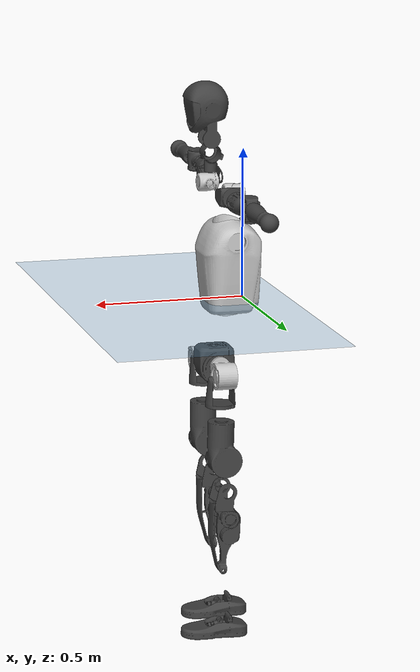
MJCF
<mujoco model="T1">
  <compiler angle="radian" assetdir="assets" balanceinertia="true" inertiafromgeom="false"/>

  <option timestep="0.005" density="1.2" viscosity="2e-05"/>

  <size nkey="1"/>

  <visual>
    <quality shadowsize="8192"/>
    <map shadowclip="0.5"/>
  </visual>

  <default>
    <default class="/">
      <joint armature="0.01" damping="0.01" frictionloss="0.1"/>
      <geom contype="0" conaffinity="0" group="1" solref="-1000 -80"/>
      <site size="0.01 0.005 0.005" group="5"/>
      <general forcelimited="true" biastype="affine" gainprm="25" biasprm="0 -25 -0.6"/>
      <default class="t1">
        <geom rgba="0.25 0.25 0.25 1"/>
        <default class="visual">
          <geom type="mesh" group="2"/>
        </default>
        <default class="collision">
          <geom group="3"/>
        </default>
        <default class="foot">
          <geom size="0.1115 0.05 0.015" type="box" condim="6" group="4" priority="1" solimp="0.015 1 0.015"/>
        </default>
        <default class="reward_collision_sphere">
          <geom group="5" rgba="1 0 0 1"/>
        </default>
      </default>
    </default>
  </default>

  <asset>
    <texture type="skybox" colorspace="auto" name="//unnamed_texture_0" builtin="gradient" rgb1="0.95 0.95 0.95" rgb2="0.95 0.95 0.95" width="100" height="600"/>
    <texture type="2d" colorspace="auto" name="texplane" builtin="checker" rgb1="0.345 0.575 0.748" rgb2="0.345 0.575 0.748" markrgb="1 1 1" width="512" height="512"/>
    <material name="MatPlane" class="/" texture="texplane" texuniform="true" texrepeat="2 2" specular="0.9"/>
    <mesh name="Trunk" class="/" file="Trunk.stl"/>
    <mesh name="H1" class="/" file="H1.stl"/>
    <mesh name="H2" class="/" file="H2.stl"/>
    <mesh name="AL1" class="/" file="AL1.stl"/>
    <mesh name="AL2" class="/" file="AL2.stl"/>
    <mesh name="AL3" class="/" file="AL3.stl"/>
    <mesh name="left_hand_link" class="/" file="left_hand_link.stl"/>
    <mesh name="AR1" class="/" file="AR1.stl"/>
    <mesh name="AR2" class="/" file="AR2.stl"/>
    <mesh name="AR3" class="/" file="AR3.stl"/>
    <mesh name="right_hand_link" class="/" file="right_hand_link.stl"/>
    <mesh name="Waist" class="/" file="Waist.stl"/>
    <mesh name="Hip_Pitch_Left" class="/" file="Hip_Pitch_Left.stl"/>
    <mesh name="Hip_Roll_Left" class="/" file="Hip_Roll_Left.stl"/>
    <mesh name="Hip_Yaw_Left" class="/" file="Hip_Yaw_Left.stl"/>
    <mesh name="Shank_Left" class="/" file="Shank_Left.stl"/>
    <mesh name="Ankle_Cross_Left" class="/" file="Ankle_Cross_Left.stl"/>
    <mesh name="left_foot_link" class="/" file="left_foot_link.stl"/>
    <mesh name="Hip_Pitch_Right" class="/" file="Hip_Pitch_Right.stl"/>
    <mesh name="Hip_Roll_Right" class="/" file="Hip_Roll_Right.stl"/>
    <mesh name="Hip_Yaw_Right" class="/" file="Hip_Yaw_Right.stl"/>
    <mesh name="Shank_Right" class="/" file="Shank_Right.stl"/>
    <mesh name="Ankle_Cross_Right" class="/" file="Ankle_Cross_Right.stl"/>
    <mesh name="right_foot_link" class="/" file="right_foot_link.stl"/>
  </asset>

  <worldbody>
    <geom name="floor" class="/" size="100 100 0.125" type="plane" group="0" material="MatPlane"/>
    <light name="toplight_shadow" class="/" pos="0 0 5" dir="0.0990148 0.0990148 -0.990148" type="directional" ambient="0.04 0.04 0.04" diffuse="0.55 0.55 0.55" specular="0.12 0.12 0.12"/>
    <light name="toplight_fill" class="/" pos="0 0 5" dir="0.0990148 0.0990148 -0.990148" type="directional" castshadow="false" ambient="0.04 0.04 0.04" diffuse="0.3 0.3 0.3" specular="0.08 0.08 0.08"/>
    <body name="trunk" childclass="t1" pos="-7.02448e-05 0.0108179 -0.00414562" quat="0.999977 -0.00387033 -0.00275157 0.00490448">
      <inertial pos="0.086673 0.0089215 0.183717" quat="0.99733 0.00250423 -0.0430504 -0.058933" mass="37.2819" diaginertia="0.745509 0.0977176 0.680107"/>
      <joint name="//unnamed_joint_0" type="free" armature="0" damping="0" frictionloss="0"/>
      <geom name="//unnamed_geom_1" class="visual" rgba="0.76 0.76 0.76 1" mesh="Trunk"/>
      <geom name="//unnamed_geom_2" class="collision" size="0.111225 0.1483 0.22245" pos="0.100133 0 0.206639" type="box"/>
      <geom name="//unnamed_geom_3" class="reward_collision_sphere" size="0.170545" pos="0.100133 0 0.172199"/>
      <geom name="//unnamed_geom_4" class="reward_collision_sphere" size="0.022245" pos="0.100133 0.0899405 0"/>
      <geom name="//unnamed_geom_5" class="reward_collision_sphere" size="0.022245" pos="0.100133 -0.0899405 0"/>
      <geom name="//unnamed_geom_6" class="reward_collision_sphere" size="0.022245" pos="0.100133 0.113219 0.309958"/>
      <geom name="//unnamed_geom_7" class="reward_collision_sphere" size="0.022245" pos="0.100133 -0.113219 0.309958"/>
      <site name="imu" pos="-0.0664843 -0.00326924 0.0656746" size="0.01483"/>
      <camera name="track" pos="0 -2.11625 0" quat="0.707107 0.707107 0 0" mode="trackcom"/>
      <camera name="ego_camera" pos="0.203605 0 0.723236" quat="-0.5 -0.5 0.5 0.5"/>
      <body name="H1" pos="0.118721 -0.000578441 0.435175" quat="1 -0.000549691 0.000106238 -0.000441478">
        <inertial pos="-0.000834513 0.0027071 0.0992915" quat="0.769798 -0.0214372 0.00295536 0.63792" mass="1.41319" diaginertia="0.00373656 0.000277954 0.00224688"/>
        <joint name="AAHead_yaw" pos="0 0 0" axis="-0.00883029 0.0287902 0.999546" range="-1.8353 1.49892" armature="0.00249338" damping="0" frictionloss="0.0293865"/>
        <geom name="//unnamed_geom_8" class="visual" mesh="H1"/>
        <body name="H2" pos="0.00985833 0.0187447 0.11401" quat="0.999989 0.0013505 -0.000686742 -0.00442609">
          <inertial pos="-0.00146042 0.0162116 0.187631" quat="0.986736 0.0884129 -0.0296189 -0.132884" mass="1.71093" diaginertia="0.0234637 0.00297019 0.0242495"/>
          <joint name="Head_pitch" pos="0 0 0" axis="0.0206225 -0.999078 -0.0376558" range="-1.32677 0.497708" armature="0.00555606" damping="0.0856357" frictionloss="0.108392"/>
          <geom name="//unnamed_geom_9" class="visual" mesh="H2"/>
          <geom name="//unnamed_geom_10" class="collision" size="0.11864" pos="0.0166889 0 0.189419"/>
          <geom name="//unnamed_geom_11" class="reward_collision_sphere" size="0.13347" pos="0.0333778 0 0.172199"/>
        </body>
      </body>
      <body name="AL1" pos="0.0894694 0.112683 0.393732" quat="0.999965 -0.0033246 -0.00408579 0.00653616">
        <inertial pos="0.0111967 0.0427397 0.0043566" quat="0.50339 0.497417 -0.505089 0.494024" mass="1.96509" diaginertia="0.0203962 0.0023738 0.00599963"/>
        <joint name="Left_Shoulder_Pitch" pos="0 0 0" axis="0.0544556 0.997729 0.0396434" range="-3.07888 0.876223" armature="0.0144755" damping="0.086671" frictionloss="0.0663935"/>
        <geom name="//unnamed_geom_12" class="visual" rgba="0.76 0.76 0.76 1" mesh="AL1"/>
        <body name="AL2" pos="0.0159822 0.0407562 -0.00876029" quat="1 0.000403366 0.000514474 -0.000269222">
          <inertial pos="0.0162758 0.0236732 0.0105778" quat="0.466254 0.530163 -0.493149 0.508269" mass="0.469206" diaginertia="0.00423501 0.000356663 0.0025929"/>
          <joint name="Left_Shoulder_Roll" pos="0 0 0" axis="-0.99958 -0.0285154 0.00523953" stiffness="0.0931453" range="-1.78426 1.65768" armature="0.00243365" damping="0" frictionloss="0.143374"/>
          <geom name="//unnamed_geom_13" class="visual" mesh="AL2"/>
          <body name="AL3" pos="-0.00847598 0.0680364 -0.0112219" quat="0.999994 -0.0024661 -0.00233429 0.00092967">
            <inertial pos="-0.0156042 0.106907 -0.00951202" quat="0.740144 0.671834 -0.02869 -0.00136359" mass="4.71158" diaginertia="0.159557 0.019093 0.0129697"/>
            <joint name="Left_Elbow_Pitch" pos="0 0 0" axis="-0.03724 -0.998633 0.0366845" stiffness="0.0479769" range="-1.92147 2.45961" armature="0.00146922" damping="0.0233585" frictionloss="0.171885"/>
            <geom name="//unnamed_geom_14" class="visual" mesh="AL3"/>
            <geom name="//unnamed_geom_15" class="collision" size="0.04449 0.111225" pos="0 0.0529062 0" quat="0.707105 0.707108 0 0" type="cylinder"/>
            <geom name="//unnamed_geom_16" class="reward_collision_sphere" size="0.053388"/>
            <body name="left_hand_link" pos="0.00721062 0.149439 0.0125129" quat="0.999963 -0.00636846 0.00330806 -0.00466434">
              <inertial pos="0.0173455 0.106225 0.0014331" quat="0.699683 0.713601 0.00900673 -0.0337194" mass="1.10805" diaginertia="0.127561 0.00957257 0.00263456"/>
              <joint name="Left_Elbow_Yaw" pos="0 0 0" axis="0.000804364 0.00472644 0.999989" range="-2.35838 0.353198" armature="0.0191705" damping="0" frictionloss="0.127777"/>
              <geom name="//unnamed_geom_17" class="visual" mesh="left_hand_link"/>
              <geom name="//unnamed_geom_18" class="collision" size="0.04449 0.129763" pos="0 0.137556 0" quat="0.707105 0.707108 0 0" type="cylinder"/>
              <geom name="//unnamed_geom_19" class="reward_collision_sphere" size="0.0741501"/>
              <geom name="//unnamed_geom_20" class="reward_collision_sphere" size="0.051905" pos="0 0.116394 0"/>
              <geom name="//unnamed_geom_21" class="reward_collision_sphere" size="0.051905" pos="0 0.227497 0"/>
            </body>
          </body>
        </body>
      </body>
      <body name="AR1" pos="0.0868135 -0.0964184 0.371372" quat="0.99999 4.64783e-06 -0.00169136 0.00415776">
        <inertial pos="0.0111291 -0.0290864 0.00722789" quat="0.505825 0.44899 -0.541609 0.499208" mass="1.84183" diaginertia="0.0237984 0.00213766 0.00464228"/>
        <joint name="Right_Shoulder_Pitch" pos="0 0 0" axis="-0.0493195 -0.997098 0.0579944" stiffness="0.0915091" range="-1.28349 3.53107" armature="0.00338085" damping="0.0591509" frictionloss="0.225708"/>
        <geom name="//unnamed_geom_22" class="visual" rgba="0.76 0.76 0.76 1" mesh="AR1"/>
        <body name="AR2" pos="-0.0176063 -0.062258 0.0116462" quat="0.999968 0.00369612 0.00188572 -0.00690837">
          <inertial pos="0.0188343 -0.0435119 0.00902868" quat="0.482833 0.528105 -0.503929 0.48377" mass="0.62814" diaginertia="0.00514732 0.00036607 0.00291144"/>
          <joint name="Right_Shoulder_Roll" pos="0 0 0" axis="-0.999531 0.0288091 0.0103507" stiffness="0.0221578" range="-1.92059 1.39851" armature="0.0136841" damping="0" frictionloss="0.0107995"/>
          <geom name="//unnamed_geom_23" class="visual" mesh="AR2"/>
          <body name="AR3" pos="-0.0117711 -0.072986 0.0188148" quat="1 -9.76808e-05 -3.05903e-05 -5.27266e-05">
            <inertial pos="-0.00361422 -0.0741202 0.00976965" quat="0.756114 0.653804 -0.026298 -0.011846" mass="3.27996" diaginertia="0.163037 0.0180887 0.00741462"/>
            <joint name="Right_Elbow_Pitch" pos="0 0 0" axis="-0.0342715 0.996954 0.0700627" range="-1.95721 2.50483" armature="0.0276444" damping="0" frictionloss="0.0555515"/>
            <geom name="//unnamed_geom_24" class="visual" mesh="AR3"/>
            <geom name="//unnamed_geom_25" class="collision" size="0.04449 0.111225" pos="0 -0.0529062 0" quat="0.707105 0.707108 0 0" type="cylinder"/>
            <geom name="//unnamed_geom_26" class="reward_collision_sphere" size="0.053388"/>
            <body name="right_hand_link" pos="-0.00232222 -0.15094 0.000790286" quat="0.999973 -0.00217206 -0.00344154 0.00607098">
              <inertial pos="-0.00400395 -0.105573 -0.0153218" quat="0.703964 0.710231 0.00156408 -0.00217388" mass="1.29916" diaginertia="0.12673 0.0115697 0.00372905"/>
              <joint name="Right_Elbow_Yaw" pos="0 0 0" axis="-0.0600935 -0.00812784 0.99816" range="0.079563 2.1876" armature="0.00254516" damping="0.10011" frictionloss="0.0480145"/>
              <geom name="//unnamed_geom_27" class="visual" mesh="right_hand_link"/>
              <geom name="//unnamed_geom_28" class="collision" size="0.04449 0.129763" pos="0 -0.137556 0" quat="0.707105 0.707108 0 0" type="cylinder"/>
              <geom name="//unnamed_geom_29" class="reward_collision_sphere" size="0.0741501"/>
              <geom name="//unnamed_geom_30" class="reward_collision_sphere" size="0.051905" pos="0 -0.116394 0"/>
              <geom name="//unnamed_geom_31" class="reward_collision_sphere" size="0.051905" pos="0 -0.227497 0"/>
            </body>
          </body>
        </body>
      </body>
      <body name="Waist" pos="0.104053 0.0148961 -0.21643" quat="1 0.000942769 6.39698e-05 -7.24578e-05">
        <inertial pos="0.0198148 0.00672822 0.00666022" quat="0.971115 -0.0364414 -0.232328 -0.0403884" mass="10.356" diaginertia="0.0794795 0.00911373 0.0902023"/>
        <joint name="Waist" pos="0 0 0" axis="0.0784502 0.00557567 0.996902" stiffness="0.0571778" range="-1.69855 1.89023" armature="0.0127992" damping="0" frictionloss="0.0342754"/>
        <geom name="//unnamed_geom_32" class="visual" mesh="Waist"/>
        <body name="Hip_Pitch_Left" pos="-0.00376353 0.111214 0.00639029" quat="0.999986 -0.000805275 -0.00483155 -0.00221281">
          <inertial pos="0.00576908 0.00265098 -0.0270061" quat="0.97209 0.23281 0.00332028 -0.0288024" mass="2.74777" diaginertia="0.0231633 0.00145632 0.015731"/>
          <joint name="Left_Hip_Pitch" pos="0 0 0" axis="-0.087461 0.995575 -0.0343727" stiffness="0.0867025" range="-1.81597 1.22497" armature="0.00713787" damping="0.0779169" frictionloss="0.171679"/>
          <geom name="//unnamed_geom_33" class="visual" rgba="0.76 0.76 0.76 1" mesh="Hip_Pitch_Left"/>
          <body name="Hip_Roll_Left" pos="0.00813709 -0.0188696 -0.049525" quat="0.999958 -0.00759629 -0.00386586 -0.0034633">
            <inertial pos="0.0163016 -0.00236033 -0.0987566" quat="0.696164 -0.0427352 0.00776565 0.716567" mass="1.66297" diaginertia="0.0220163 0.00234653 0.00955168"/>
            <joint name="Left_Hip_Roll" pos="0 0 0" axis="-0.996315 -0.0636178 -0.0575291" range="-1.76333 0.251712" armature="0.0228906" damping="0.0357826" frictionloss="0.195904"/>
            <geom name="//unnamed_geom_34" class="visual" mesh="Hip_Roll_Left"/>
            <geom name="//unnamed_geom_35" class="reward_collision_sphere" size="0.0815651"/>
            <body name="Hip_Yaw_Left" pos="-0.00945027 -0.00564033 -0.131243" quat="1 -5.59623e-05 -1.91233e-05 4.29067e-05">
              <inertial pos="-0.0162329 -0.00751256 -0.153411" quat="0.66499 -0.00484367 -0.100903 0.739989" mass="9.53456" diaginertia="0.327834 0.0432178 0.0474676"/>
              <joint name="Left_Hip_Yaw" pos="0 0 0" axis="0.00347613 0.0164807 -0.999858" stiffness="0.00942048" range="-0.730978 0.984582" armature="0.0144862" damping="0" frictionloss="0.114231"/>
              <geom name="//unnamed_geom_36" class="visual" mesh="Hip_Yaw_Left"/>
              <geom name="//unnamed_geom_37" class="collision" size="0.0741501 0.11864" type="cylinder"/>
              <body name="Shank_Left" pos="-0.0146677 0.0160929 -0.233676" quat="1 -2.58333e-06 -0.000409509 0.0006324">
                <inertial pos="-0.000737325 0.0142567 -0.209764" quat="0.999488 0.0187714 -0.0251043 -0.00636034" mass="4.12108" diaginertia="0.377679 0.0404145 0.0288651"/>
                <joint name="Left_Knee_Pitch" pos="0 0 0" axis="-0.0309021 0.999059 0.0304226" range="-0.181853 2.55558" armature="0.00373907" damping="0.0804918" frictionloss="0.201843"/>
                <geom name="//unnamed_geom_38" class="visual" mesh="Shank_Left"/>
                <geom name="//unnamed_geom_39" class="collision" size="0.0741501 0.111225" pos="0 0 -0.206639" type="cylinder"/>
                <geom name="//unnamed_geom_40" class="reward_collision_sphere" size="0.0963951"/>
                <body name="Ankle_Cross_Left" pos="-0.0022312 -0.0133357 -0.467358" quat="0.999968 0.00452796 0.00309799 -0.00586962">
                  <inertial pos="0.00421855 0.0178028 -0.00835493" quat="0.410319 0.561939 0.520721 0.494684" mass="0.246205" diaginertia="0.000403668 2.86969e-05 0.000149525"/>
                  <joint name="Left_Ankle_Pitch" pos="0 0 0" axis="0.049416 0.998072 -0.0375434" stiffness="0.0364486" range="-1.00154 0.184273" armature="0.0208668" damping="0.0299109" frictionloss="0.114508"/>
                  <geom name="//unnamed_geom_41" class="visual" mesh="Ankle_Cross_Left"/>
                  <body name="left_foot_link" pos="0.0149382 0.0174989 -0.0123155" quat="1 0.000239215 -0.00068818 -0.000516045">
                    <inertial pos="-0.0160303 0.00402367 -0.0339461" quat="0.00116259 0.617954 -0.0363736 0.785372" mass="2.29728" diaginertia="0.0412825 0.00318531 0.0402495"/>
                    <joint name="Left_Ankle_Roll" pos="0 0 0" axis="-0.999971 0.00732832 0.00196018" range="-0.397515 0.433086" armature="0.0273563" damping="0.0720929" frictionloss="0.166719"/>
                    <geom name="//unnamed_geom_42" class="visual" mesh="left_foot_link"/>
                    <geom name="left_foot" class="foot" size="0.136345 0.101376 0.0159349" pos="0.0166889 0 -0.0258299"/>
                    <geom name="//unnamed_geom_44" class="reward_collision_sphere" size="0.0771161" pos="0.0166889 0 -0.0258299"/>
                    <geom name="//unnamed_geom_45" class="reward_collision_sphere" size="0.04449" pos="0.158545 -0.0243368 -0.0258299"/>
                    <geom name="//unnamed_geom_46" class="reward_collision_sphere" size="0.04449" pos="-0.116822 -0.0243368 -0.0258299"/>
                    <site name="left_foot" class="foot" pos="0.0166889 0 -0.0258299" size="0.01483"/>
                  </body>
                </body>
              </body>
            </body>
          </body>
        </body>
        <body name="Hip_Pitch_Right" pos="0.0142836 -0.110486 0.0125742" quat="0.999959 -0.00127917 0.00472242 0.00764557">
          <inertial pos="0.00699789 0.0268873 -0.0305934" quat="0.960678 -0.276939 -0.0156374 -0.0125734" mass="3.41325" diaginertia="0.0280545 0.00223445 0.0253186"/>
          <joint name="Right_Hip_Pitch" pos="0 0 0" axis="0.00208164 -0.999963 0.00833344" stiffness="0.0431362" range="-1.29946 1.78235" armature="0.0226797" damping="0" frictionloss="0.019337"/>
          <geom name="//unnamed_geom_47" class="visual" rgba="0.76 0.76 0.76 1" mesh="Hip_Pitch_Right"/>
          <body name="Hip_Roll_Right" pos="-0.00595514 0.00928989 -0.0250922" quat="1 0.000472864 0.000307657 -0.000603129">
            <inertial pos="0.0181549 -0.0181913 -0.0749479" quat="0.674855 0.0168492 -0.00160238 0.737756" mass="1.17356" diaginertia="0.0206256 0.00194927 0.00757784"/>
            <joint name="Right_Hip_Roll" pos="0 0 0" axis="-0.99998 -0.00217782 0.00586215" stiffness="0.0024755" range="-0.103425 1.55622" armature="0.00742446" damping="0" frictionloss="0.109508"/>
            <geom name="//unnamed_geom_48" class="visual" mesh="Hip_Roll_Right"/>
            <geom name="//unnamed_geom_49" class="reward_collision_sphere" size="0.0815651"/>
            <body name="Hip_Yaw_Right" pos="0.00372934 0.0125744 -0.134905" quat="0.999987 -0.00270347 0.000865067 -0.00418079">
              <inertial pos="-0.0242657 0.0124233 -0.160704" quat="0.71442 -0.0308936 -0.0347263 0.698171" mass="7.15251" diaginertia="0.268302 0.0331822 0.0372479"/>
              <joint name="Right_Hip_Yaw" pos="0 0 0" axis="-0.000428662 0.00149924 -0.999999" stiffness="0.0222624" range="-0.879282 1.30078" armature="0.0288664" damping="0" frictionloss="0.0245154"/>
              <geom name="//unnamed_geom_50" class="visual" mesh="Hip_Yaw_Right"/>
              <geom name="//unnamed_geom_51" class="collision" size="0.0741501 0.11864" type="cylinder"/>
              <body name="Shank_Right" pos="-0.0323984 -0.0169372 -0.236713" quat="0.999967 0.00147533 0.00663059 -0.00434664">
                <inertial pos="-0.0128511 -0.0142698 -0.228622" quat="0.99744 -0.0421782 0.0244763 -0.0523039" mass="6.96553" diaginertia="0.528841 0.0493876 0.0230793"/>
                <joint name="Right_Knee_Pitch" pos="0 0 0" axis="-0.0272769 -0.996987 0.0726122" stiffness="0.0014546" range="-2.64265 0.295239" armature="0.0193185" damping="0" frictionloss="0.216312"/>
                <geom name="//unnamed_geom_52" class="visual" mesh="Shank_Right"/>
                <geom name="//unnamed_geom_53" class="collision" size="0.0741501 0.111225" pos="0 0 -0.206639" type="cylinder"/>
                <geom name="//unnamed_geom_54" class="reward_collision_sphere" size="0.0963951"/>
                <body name="Ankle_Cross_Right" pos="-0.0111876 0.0152061 -0.481832" quat="0.999955 -0.00505351 -0.00798584 -0.000160541">
                  <inertial pos="0.00287614 0.00884431 -0.027803" quat="0.486157 0.51513 0.549205 0.443471" mass="0.229171" diaginertia="0.000343148 3.3953e-05 0.000205676"/>
                  <joint name="Right_Ankle_Pitch" pos="0 0 0" axis="-0.038238 -0.998973 0.0243146" stiffness="0.0298946" range="-0.048218 0.778947" armature="0.0115964" damping="0.0163184" frictionloss="0.189432"/>
                  <geom name="//unnamed_geom_55" class="visual" mesh="Ankle_Cross_Right"/>
                  <body name="right_foot_link" pos="0.00818904 0.0157389 -0.0100388" quat="0.999994 0.00197109 -0.00205094 -0.00175533">
                    <inertial pos="0.00348891 -0.00869742 -0.00087096" quat="-0.010991 0.597912 -0.0197641 0.801242" mass="2.44311" diaginertia="0.0325759 0.00316427 0.037996"/>
                    <joint name="Right_Ankle_Roll" pos="0 0 0" axis="-0.997824 -0.00728085 -0.0655303" stiffness="0.0617611" range="-0.817297 0.427224" armature="0.00293057" damping="0.00173457" frictionloss="0.246541"/>
                    <geom name="//unnamed_geom_56" class="visual" mesh="right_foot_link"/>
                    <geom name="right_foot" class="foot" size="0.183183 0.102762 0.0227541" pos="0.0166889 0 -0.0258299"/>
                    <geom name="//unnamed_geom_58" class="reward_collision_sphere" size="0.0593201"/>
                    <geom name="//unnamed_geom_59" class="reward_collision_sphere" size="0.04449" pos="0.0166889 0 -0.0258299"/>
                    <geom name="//unnamed_geom_60" class="reward_collision_sphere" size="0.04449" pos="0.158545 0.0243368 -0.0258299"/>
                    <geom name="//unnamed_geom_61" class="reward_collision_sphere" size="0.04449" pos="-0.116822 0.0243368 -0.0258299"/>
                    <site name="right_foot" class="foot" pos="0.0166889 0 -0.0258299" size="0.01483"/>
                  </body>
                </body>
              </body>
            </body>
          </body>
        </body>
      </body>
    </body>
  </worldbody>

  <contact>
    <pair class="/" geom1="floor" geom2="left_foot" name="//unnamed_contact_0"/>
    <pair class="/" geom1="floor" geom2="right_foot" name="//unnamed_contact_1"/>
  </contact>

  <actuator>
    <general name="AAHead_yaw" class="/" joint="AAHead_yaw" forcerange="-14.972 14.972" gainprm="40.3401" biasprm="0 -40.3401 -0.927121"/>
    <general name="Head_pitch" class="/" joint="Head_pitch" forcerange="-5.33425 5.33425" gainprm="40.3401" biasprm="0 -40.3401 -0.927121"/>
    <general name="Left_Shoulder_Pitch" class="/" joint="Left_Shoulder_Pitch" forcerange="-32.366 32.366" gainprm="40.3401" biasprm="0 -40.3401 -0.927121"/>
    <general name="Left_Shoulder_Roll" class="/" joint="Left_Shoulder_Roll" forcerange="-11.2138 11.2138" gainprm="40.3401" biasprm="0 -40.3401 -0.927121"/>
    <general name="Left_Elbow_Pitch" class="/" joint="Left_Elbow_Pitch" forcerange="-31.8224 31.8224" gainprm="40.3401" biasprm="0 -40.3401 -0.927121"/>
    <general name="Left_Elbow_Yaw" class="/" joint="Left_Elbow_Yaw" forcerange="-25.0827 25.0827" gainprm="40.3401" biasprm="0 -40.3401 -0.927121"/>
    <general name="Right_Shoulder_Pitch" class="/" joint="Right_Shoulder_Pitch" forcerange="-27.8123 27.8123" gainprm="40.3401" biasprm="0 -40.3401 -0.927121"/>
    <general name="Right_Shoulder_Roll" class="/" joint="Right_Shoulder_Roll" forcerange="-35.6304 35.6304" gainprm="40.3401" biasprm="0 -40.3401 -0.927121"/>
    <general name="Right_Elbow_Pitch" class="/" joint="Right_Elbow_Pitch" forcerange="-20.0898 20.0898" gainprm="40.3401" biasprm="0 -40.3401 -0.927121"/>
    <general name="Right_Elbow_Yaw" class="/" joint="Right_Elbow_Yaw" forcerange="-33.5306 33.5306" gainprm="40.3401" biasprm="0 -40.3401 -0.927121"/>
    <general name="Waist" class="/" joint="Waist" forcerange="-70.4456 70.4456" gainprm="40.3401" biasprm="0 -40.3401 -0.927121"/>
    <general name="Left_Hip_Pitch" class="/" joint="Left_Hip_Pitch" forcerange="-87.916 87.916" gainprm="40.3401" biasprm="0 -40.3401 -0.927121"/>
    <general name="Left_Hip_Roll" class="/" joint="Left_Hip_Roll" forcerange="-49.4559 49.4559" gainprm="40.3401" biasprm="0 -40.3401 -0.927121"/>
    <general name="Left_Hip_Yaw" class="/" joint="Left_Hip_Yaw" forcerange="-55.5164 55.5164" gainprm="40.3401" biasprm="0 -40.3401 -0.927121"/>
    <general name="Left_Knee_Pitch" class="/" joint="Left_Knee_Pitch" forcerange="-138.028 138.028" gainprm="40.3401" biasprm="0 -40.3401 -0.927121"/>
    <general name="Left_Ankle_Pitch" class="/" joint="Left_Ankle_Pitch" forcerange="-9.64564 9.64564" gainprm="40.3401" biasprm="0 -40.3401 -0.927121"/>
    <general name="Left_Ankle_Roll" class="/" joint="Left_Ankle_Roll" forcerange="-37.9089 37.9089" gainprm="40.3401" biasprm="0 -40.3401 -0.927121"/>
    <general name="Right_Hip_Pitch" class="/" joint="Right_Hip_Pitch" forcerange="-65.9757 65.9757" gainprm="40.3401" biasprm="0 -40.3401 -0.927121"/>
    <general name="Right_Hip_Roll" class="/" joint="Right_Hip_Roll" forcerange="-69.1176 69.1176" gainprm="40.3401" biasprm="0 -40.3401 -0.927121"/>
    <general name="Right_Hip_Yaw" class="/" joint="Right_Hip_Yaw" forcerange="-16.6496 16.6496" gainprm="40.3401" biasprm="0 -40.3401 -0.927121"/>
    <general name="Right_Knee_Pitch" class="/" joint="Right_Knee_Pitch" forcerange="-63.4408 63.4408" gainprm="40.3401" biasprm="0 -40.3401 -0.927121"/>
    <general name="Right_Ankle_Pitch" class="/" joint="Right_Ankle_Pitch" forcerange="-31.1194 31.1194" gainprm="40.3401" biasprm="0 -40.3401 -0.927121"/>
    <general name="Right_Ankle_Roll" class="/" joint="Right_Ankle_Roll" forcerange="-23.7089 23.7089" gainprm="40.3401" biasprm="0 -40.3401 -0.927121"/>
  </actuator>

  <sensor>
    <gyro site="imu" name="imu_angular_velocity"/>
    <velocimeter site="imu" name="imu_linear_velocity"/>
    <framelinvel objtype="site" objname="left_foot" name="left_foot_global_linear_velocity"/>
    <framelinvel objtype="site" objname="right_foot" name="right_foot_global_linear_velocity"/>
  </sensor>

  <keyframe>
    <key name="home" qpos="0 0 0.6385 1 0 0 0 0 0 0 1.4 0 -0.4 0 -1.4 0 0.4 0 -0.4 0 0 0.8 -0.4 0 0.4 0 0 -0.8 0.4 0"/>
  </keyframe>
</mujoco>
